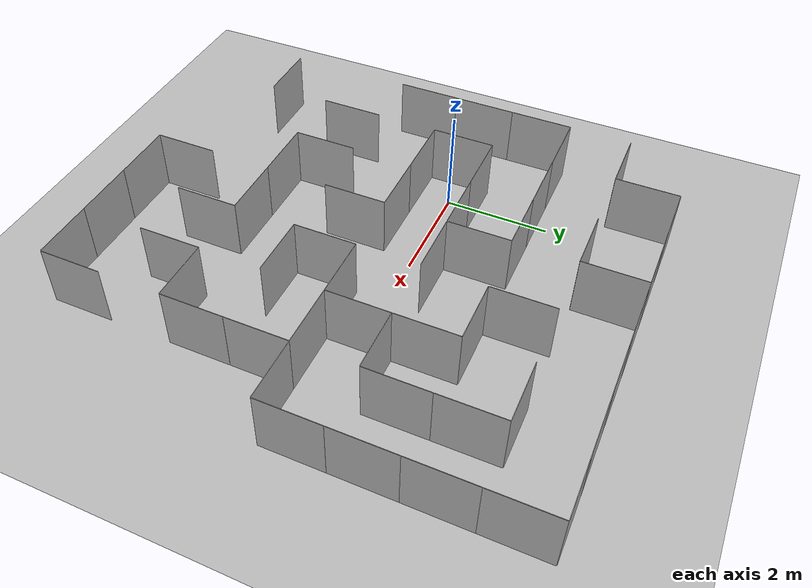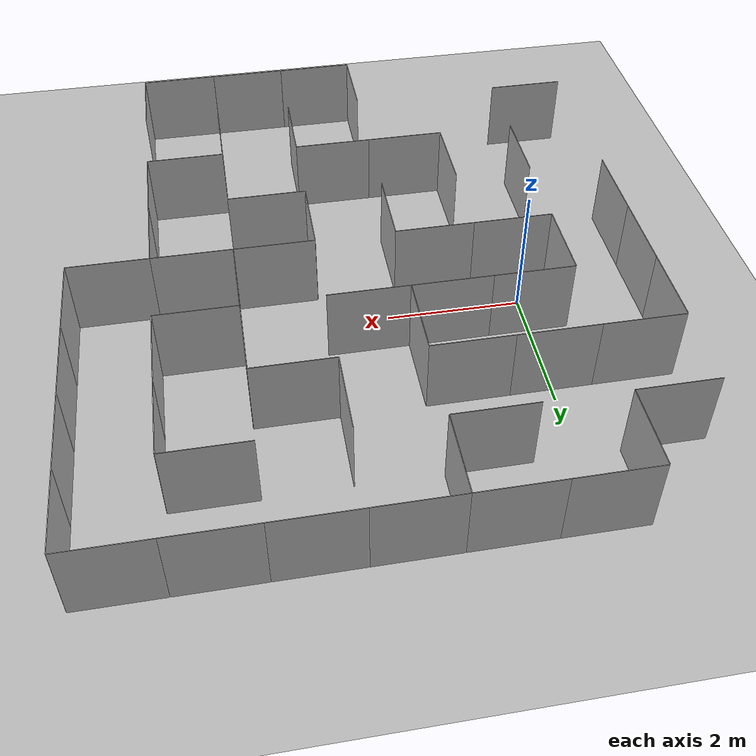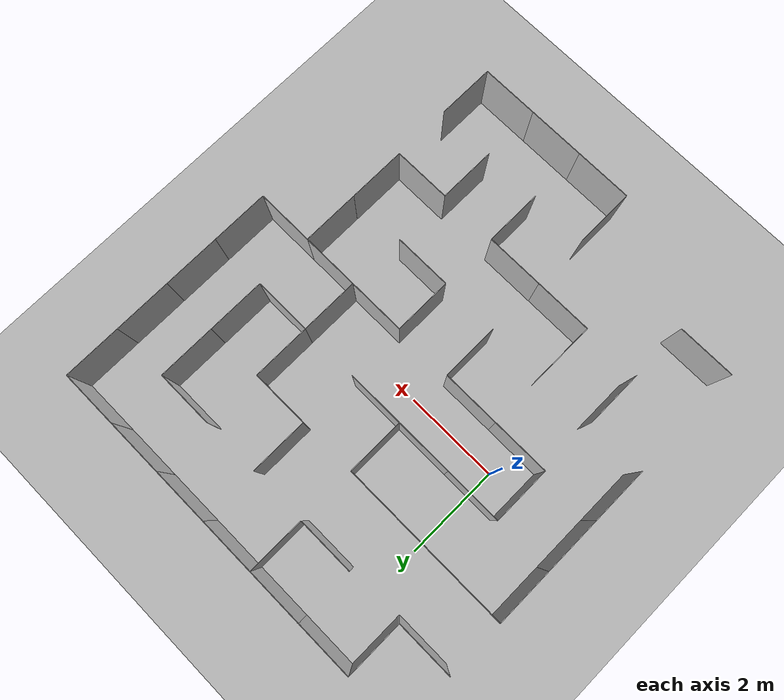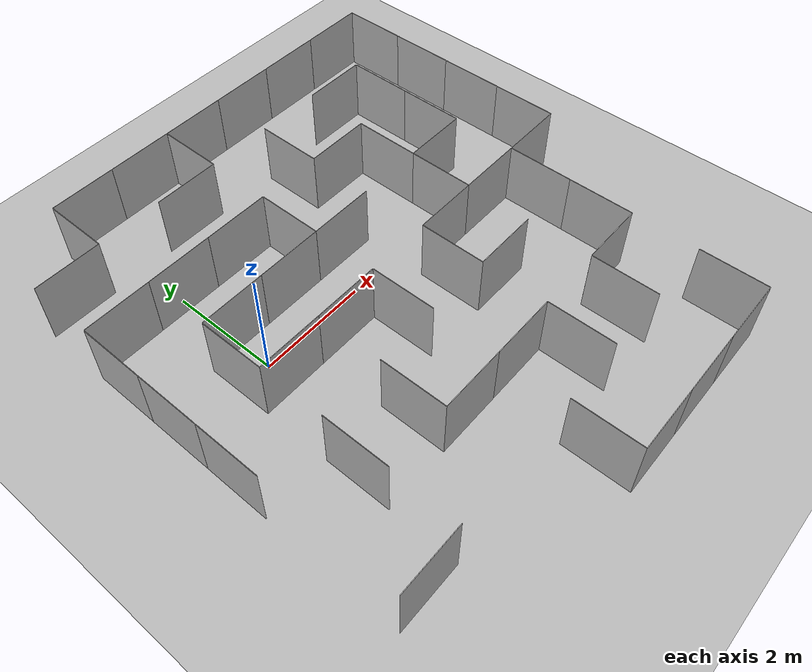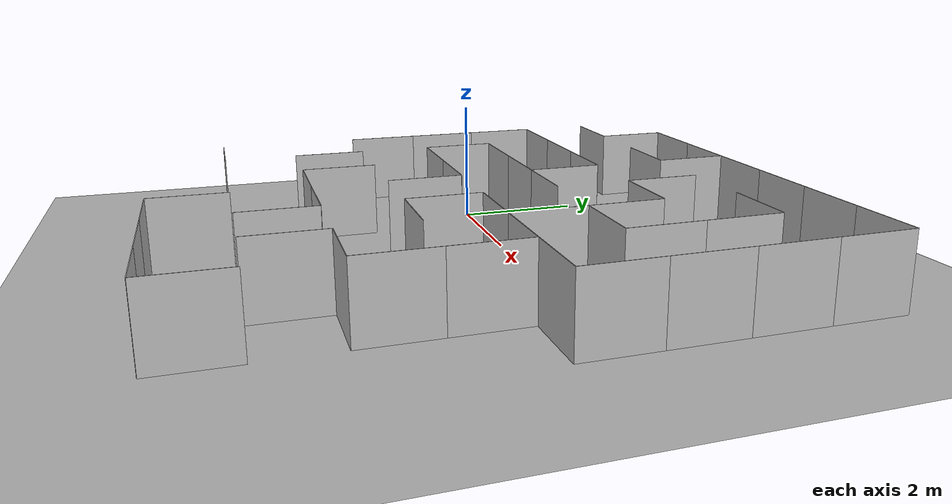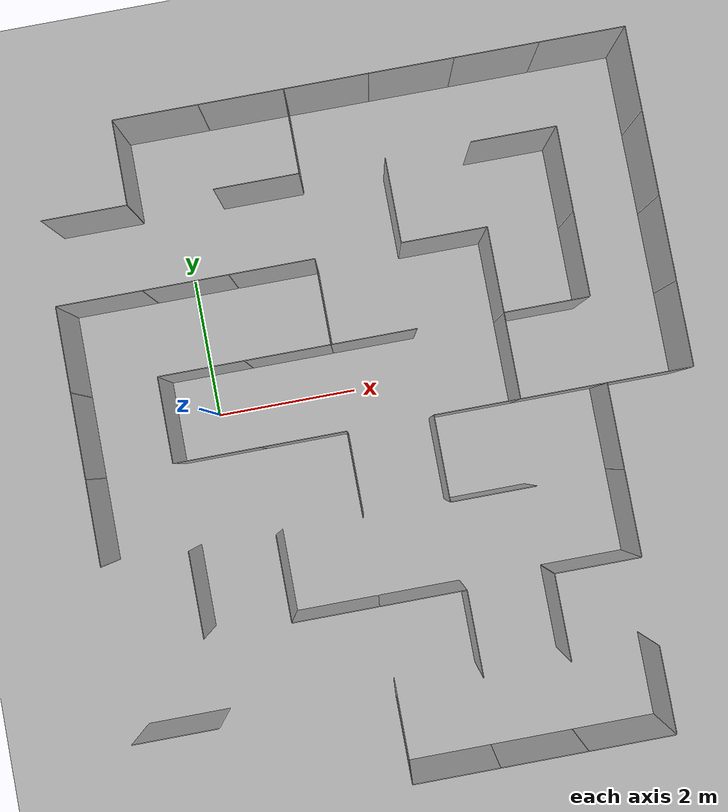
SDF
<sdf version="1.4">
 <world name="default">
  <model name="plane_model">
   <static>true</static>
   <link name="plane_model_link">
    <collision name="plane_model_collision">
     <geometry><plane><normal>0 0 1</normal></plane></geometry>
     <surface>
      <friction>
       <ode><mu>10.0</mu><mu2>10.0</mu2><fdir1>0 0 0</fdir1><slip1>0</slip1><slip2>0</slip2></ode>
      </friction>
      <bounce><restitution_coefficient>0</restitution_coefficient><threshold>1000000.0</threshold></bounce>
      <contact>
       <ode>
        <soft_cfm>0</soft_cfm>
        <soft_erp>0.2</soft_erp>
        <kp>1e10</kp>
        <kd>1</kd>
        <max_vel>100.0</max_vel>
        <min_depth>0.0001</min_depth>
       </ode>
      </contact>
     </surface>
    </collision>
    <visual name="plane_model_visual">
     <cast_shadows>false</cast_shadows>
     <geometry><mesh><uri>model://ground_plane/ground_plane.dae</uri><scale>1 1 1</scale></mesh></geometry>
    </visual>
   </link>
  </model>
  <model name="small_wall_61">
   <static>true</static>
   <link name="small_wall_61_link">
    <pose>0 0 0 0 0 -4.71239</pose>
    <collision name="small_wall_61_collision">
     <geometry><mesh><uri>model://small_wall/meshes/small_wall.dae</uri><scale>1 1 1</scale></mesh></geometry>
    </collision>
    <visual name="small_wall_61_visual">
     <cast_shadows>false</cast_shadows>
     <geometry><mesh><uri>model://small_wall/meshes/small_wall.dae</uri><scale>1 1 1</scale></mesh></geometry>
    </visual>
   </link>
  </model>
  <model name="small_wall_62">
   <static>true</static>
   <link name="small_wall_62_link">
    <pose>0 1.2 0 0 0 -3.14159</pose>
    <collision name="small_wall_62_collision">
     <geometry><mesh><uri>model://small_wall/meshes/small_wall.dae</uri><scale>1 1 1</scale></mesh></geometry>
    </collision>
    <visual name="small_wall_62_visual">
     <cast_shadows>false</cast_shadows>
     <geometry><mesh><uri>model://small_wall/meshes/small_wall.dae</uri><scale>1 1 1</scale></mesh></geometry>
    </visual>
   </link>
  </model>
  <model name="small_wall_63">
   <static>true</static>
   <link name="small_wall_63_link">
    <pose>1.2 1.2 0 0 0 -3.14159</pose>
    <collision name="small_wall_63_collision">
     <geometry><mesh><uri>model://small_wall/meshes/small_wall.dae</uri><scale>1 1 1</scale></mesh></geometry>
    </collision>
    <visual name="small_wall_63_visual">
     <cast_shadows>false</cast_shadows>
     <geometry><mesh><uri>model://small_wall/meshes/small_wall.dae</uri><scale>1 1 1</scale></mesh></geometry>
    </visual>
   </link>
  </model>
  <model name="small_wall_64">
   <static>true</static>
   <link name="small_wall_64_link">
    <pose>0 0 0 0 0 -3.14159</pose>
    <collision name="small_wall_64_collision">
     <geometry><mesh><uri>model://small_wall/meshes/small_wall.dae</uri><scale>1 1 1</scale></mesh></geometry>
    </collision>
    <visual name="small_wall_64_visual">
     <cast_shadows>false</cast_shadows>
     <geometry><mesh><uri>model://small_wall/meshes/small_wall.dae</uri><scale>1 1 1</scale></mesh></geometry>
    </visual>
   </link>
  </model>
  <model name="small_wall_65">
   <static>true</static>
   <link name="small_wall_65_link">
    <pose>1.2 0 0 0 0 -3.14159</pose>
    <collision name="small_wall_65_collision">
     <geometry><mesh><uri>model://small_wall/meshes/small_wall.dae</uri><scale>1 1 1</scale></mesh></geometry>
    </collision>
    <visual name="small_wall_65_visual">
     <cast_shadows>false</cast_shadows>
     <geometry><mesh><uri>model://small_wall/meshes/small_wall.dae</uri><scale>1 1 1</scale></mesh></geometry>
    </visual>
   </link>
  </model>
  <model name="small_wall_66">
   <static>true</static>
   <link name="small_wall_66_link">
    <pose>2.4 -1.2 0 0 0 -4.71239</pose>
    <collision name="small_wall_66_collision">
     <geometry><mesh><uri>model://small_wall/meshes/small_wall.dae</uri><scale>1 1 1</scale></mesh></geometry>
    </collision>
    <visual name="small_wall_66_visual">
     <cast_shadows>false</cast_shadows>
     <geometry><mesh><uri>model://small_wall/meshes/small_wall.dae</uri><scale>1 1 1</scale></mesh></geometry>
    </visual>
   </link>
  </model>
  <model name="small_wall_67">
   <static>true</static>
   <link name="small_wall_67_link">
    <pose>2.4 -1.2 0 0 0 -1.5708</pose>
    <collision name="small_wall_67_collision">
     <geometry><mesh><uri>model://small_wall/meshes/small_wall.dae</uri><scale>1 1 1</scale></mesh></geometry>
    </collision>
    <visual name="small_wall_67_visual">
     <cast_shadows>false</cast_shadows>
     <geometry><mesh><uri>model://small_wall/meshes/small_wall.dae</uri><scale>1 1 1</scale></mesh></geometry>
    </visual>
   </link>
  </model>
  <model name="small_wall_68">
   <static>true</static>
   <link name="small_wall_68_link">
    <pose>3.6 0 0 0 0 -3.14159</pose>
    <collision name="small_wall_68_collision">
     <geometry><mesh><uri>model://small_wall/meshes/small_wall.dae</uri><scale>1 1 1</scale></mesh></geometry>
    </collision>
    <visual name="small_wall_68_visual">
     <cast_shadows>false</cast_shadows>
     <geometry><mesh><uri>model://small_wall/meshes/small_wall.dae</uri><scale>1 1 1</scale></mesh></geometry>
    </visual>
   </link>
  </model>
  <model name="small_wall_69">
   <static>true</static>
   <link name="small_wall_69_link">
    <pose>3.6 0 0 0 0 -1.5708</pose>
    <collision name="small_wall_69_collision">
     <geometry><mesh><uri>model://small_wall/meshes/small_wall.dae</uri><scale>1 1 1</scale></mesh></geometry>
    </collision>
    <visual name="small_wall_69_visual">
     <cast_shadows>false</cast_shadows>
     <geometry><mesh><uri>model://small_wall/meshes/small_wall.dae</uri><scale>1 1 1</scale></mesh></geometry>
    </visual>
   </link>
  </model>
  <model name="small_wall_70">
   <static>true</static>
   <link name="small_wall_70_link">
    <pose>2.4 1.2 0 0 0 -3.14159</pose>
    <collision name="small_wall_70_collision">
     <geometry><mesh><uri>model://small_wall/meshes/small_wall.dae</uri><scale>1 1 1</scale></mesh></geometry>
    </collision>
    <visual name="small_wall_70_visual">
     <cast_shadows>false</cast_shadows>
     <geometry><mesh><uri>model://small_wall/meshes/small_wall.dae</uri><scale>1 1 1</scale></mesh></geometry>
    </visual>
   </link>
  </model>
  <model name="small_wall_71">
   <static>true</static>
   <link name="small_wall_71_link">
    <pose>3.6 1.2 0 0 0 -1.5708</pose>
    <collision name="small_wall_71_collision">
     <geometry><mesh><uri>model://small_wall/meshes/small_wall.dae</uri><scale>1 1 1</scale></mesh></geometry>
    </collision>
    <visual name="small_wall_71_visual">
     <cast_shadows>false</cast_shadows>
     <geometry><mesh><uri>model://small_wall/meshes/small_wall.dae</uri><scale>1 1 1</scale></mesh></geometry>
    </visual>
   </link>
  </model>
  <model name="small_wall_72">
   <static>true</static>
   <link name="small_wall_72_link">
    <pose>3.6 1.2 0 0 0 0</pose>
    <collision name="small_wall_72_collision">
     <geometry><mesh><uri>model://small_wall/meshes/small_wall.dae</uri><scale>1 1 1</scale></mesh></geometry>
    </collision>
    <visual name="small_wall_72_visual">
     <cast_shadows>false</cast_shadows>
     <geometry><mesh><uri>model://small_wall/meshes/small_wall.dae</uri><scale>1 1 1</scale></mesh></geometry>
    </visual>
   </link>
  </model>
  <model name="small_wall_73">
   <static>true</static>
   <link name="small_wall_73_link">
    <pose>2.4 1.2 0 0 0 -4.71239</pose>
    <collision name="small_wall_73_collision">
     <geometry><mesh><uri>model://small_wall/meshes/small_wall.dae</uri><scale>1 1 1</scale></mesh></geometry>
    </collision>
    <visual name="small_wall_73_visual">
     <cast_shadows>false</cast_shadows>
     <geometry><mesh><uri>model://small_wall/meshes/small_wall.dae</uri><scale>1 1 1</scale></mesh></geometry>
    </visual>
   </link>
  </model>
  <model name="small_wall_74">
   <static>true</static>
   <link name="small_wall_74_link">
    <pose>3.6 2.4 0 0 0 -4.71239</pose>
    <collision name="small_wall_74_collision">
     <geometry><mesh><uri>model://small_wall/meshes/small_wall.dae</uri><scale>1 1 1</scale></mesh></geometry>
    </collision>
    <visual name="small_wall_74_visual">
     <cast_shadows>false</cast_shadows>
     <geometry><mesh><uri>model://small_wall/meshes/small_wall.dae</uri><scale>1 1 1</scale></mesh></geometry>
    </visual>
   </link>
  </model>
  <model name="small_wall_75">
   <static>true</static>
   <link name="small_wall_75_link">
    <pose>1.2 2.4 0 0 0 -3.14159</pose>
    <collision name="small_wall_75_collision">
     <geometry><mesh><uri>model://small_wall/meshes/small_wall.dae</uri><scale>1 1 1</scale></mesh></geometry>
    </collision>
    <visual name="small_wall_75_visual">
     <cast_shadows>false</cast_shadows>
     <geometry><mesh><uri>model://small_wall/meshes/small_wall.dae</uri><scale>1 1 1</scale></mesh></geometry>
    </visual>
   </link>
  </model>
  <model name="small_wall_76">
   <static>true</static>
   <link name="small_wall_76_link">
    <pose>0 2.4 0 0 0 -3.14159</pose>
    <collision name="small_wall_76_collision">
     <geometry><mesh><uri>model://small_wall/meshes/small_wall.dae</uri><scale>1 1 1</scale></mesh></geometry>
    </collision>
    <visual name="small_wall_76_visual">
     <cast_shadows>false</cast_shadows>
     <geometry><mesh><uri>model://small_wall/meshes/small_wall.dae</uri><scale>1 1 1</scale></mesh></geometry>
    </visual>
   </link>
  </model>
  <model name="small_wall_77">
   <static>true</static>
   <link name="small_wall_77_link">
    <pose>-1.2 1.2 0 0 0 0</pose>
    <collision name="small_wall_77_collision">
     <geometry><mesh><uri>model://small_wall/meshes/small_wall.dae</uri><scale>1 1 1</scale></mesh></geometry>
    </collision>
    <visual name="small_wall_77_visual">
     <cast_shadows>false</cast_shadows>
     <geometry><mesh><uri>model://small_wall/meshes/small_wall.dae</uri><scale>1 1 1</scale></mesh></geometry>
    </visual>
   </link>
  </model>
  <model name="small_wall_78">
   <static>true</static>
   <link name="small_wall_78_link">
    <pose>-1.2 1.2 0 0 0 -4.71239</pose>
    <collision name="small_wall_78_collision">
     <geometry><mesh><uri>model://small_wall/meshes/small_wall.dae</uri><scale>1 1 1</scale></mesh></geometry>
    </collision>
    <visual name="small_wall_78_visual">
     <cast_shadows>false</cast_shadows>
     <geometry><mesh><uri>model://small_wall/meshes/small_wall.dae</uri><scale>1 1 1</scale></mesh></geometry>
    </visual>
   </link>
  </model>
  <model name="small_wall_79">
   <static>true</static>
   <link name="small_wall_79_link">
    <pose>-2.4 0 0 0 0 -1.5708</pose>
    <collision name="small_wall_79_collision">
     <geometry><mesh><uri>model://small_wall/meshes/small_wall.dae</uri><scale>1 1 1</scale></mesh></geometry>
    </collision>
    <visual name="small_wall_79_visual">
     <cast_shadows>false</cast_shadows>
     <geometry><mesh><uri>model://small_wall/meshes/small_wall.dae</uri><scale>1 1 1</scale></mesh></geometry>
    </visual>
   </link>
  </model>
  <model name="small_wall_80">
   <static>true</static>
   <link name="small_wall_80_link">
    <pose>1.2 3.6 0 0 0 -3.14159</pose>
    <collision name="small_wall_80_collision">
     <geometry><mesh><uri>model://small_wall/meshes/small_wall.dae</uri><scale>1 1 1</scale></mesh></geometry>
    </collision>
    <visual name="small_wall_80_visual">
     <cast_shadows>false</cast_shadows>
     <geometry><mesh><uri>model://small_wall/meshes/small_wall.dae</uri><scale>1 1 1</scale></mesh></geometry>
    </visual>
   </link>
  </model>
  <model name="small_wall_81">
   <static>true</static>
   <link name="small_wall_81_link">
    <pose>2.4 3.6 0 0 0 -4.71239</pose>
    <collision name="small_wall_81_collision">
     <geometry><mesh><uri>model://small_wall/meshes/small_wall.dae</uri><scale>1 1 1</scale></mesh></geometry>
    </collision>
    <visual name="small_wall_81_visual">
     <cast_shadows>false</cast_shadows>
     <geometry><mesh><uri>model://small_wall/meshes/small_wall.dae</uri><scale>1 1 1</scale></mesh></geometry>
    </visual>
   </link>
  </model>
  <model name="small_wall_82">
   <static>true</static>
   <link name="small_wall_82_link">
    <pose>2.4 3.6 0 0 0 0</pose>
    <collision name="small_wall_82_collision">
     <geometry><mesh><uri>model://small_wall/meshes/small_wall.dae</uri><scale>1 1 1</scale></mesh></geometry>
    </collision>
    <visual name="small_wall_82_visual">
     <cast_shadows>false</cast_shadows>
     <geometry><mesh><uri>model://small_wall/meshes/small_wall.dae</uri><scale>1 1 1</scale></mesh></geometry>
    </visual>
   </link>
  </model>
  <model name="small_wall_83">
   <static>true</static>
   <link name="small_wall_83_link">
    <pose>3.6 3.6 0 0 0 0</pose>
    <collision name="small_wall_83_collision">
     <geometry><mesh><uri>model://small_wall/meshes/small_wall.dae</uri><scale>1 1 1</scale></mesh></geometry>
    </collision>
    <visual name="small_wall_83_visual">
     <cast_shadows>false</cast_shadows>
     <geometry><mesh><uri>model://small_wall/meshes/small_wall.dae</uri><scale>1 1 1</scale></mesh></geometry>
    </visual>
   </link>
  </model>
  <model name="small_wall_84">
   <static>true</static>
   <link name="small_wall_84_link">
    <pose>4.8 2.4 0 0 0 0</pose>
    <collision name="small_wall_84_collision">
     <geometry><mesh><uri>model://small_wall/meshes/small_wall.dae</uri><scale>1 1 1</scale></mesh></geometry>
    </collision>
    <visual name="small_wall_84_visual">
     <cast_shadows>false</cast_shadows>
     <geometry><mesh><uri>model://small_wall/meshes/small_wall.dae</uri><scale>1 1 1</scale></mesh></geometry>
    </visual>
   </link>
  </model>
  <model name="small_wall_85">
   <static>true</static>
   <link name="small_wall_85_link">
    <pose>4.8 3.6 0 0 0 0</pose>
    <collision name="small_wall_85_collision">
     <geometry><mesh><uri>model://small_wall/meshes/small_wall.dae</uri><scale>1 1 1</scale></mesh></geometry>
    </collision>
    <visual name="small_wall_85_visual">
     <cast_shadows>false</cast_shadows>
     <geometry><mesh><uri>model://small_wall/meshes/small_wall.dae</uri><scale>1 1 1</scale></mesh></geometry>
    </visual>
   </link>
  </model>
  <model name="small_wall_86">
   <static>true</static>
   <link name="small_wall_86_link">
    <pose>4.8 2.4 0 0 0 -1.5708</pose>
    <collision name="small_wall_86_collision">
     <geometry><mesh><uri>model://small_wall/meshes/small_wall.dae</uri><scale>1 1 1</scale></mesh></geometry>
    </collision>
    <visual name="small_wall_86_visual">
     <cast_shadows>false</cast_shadows>
     <geometry><mesh><uri>model://small_wall/meshes/small_wall.dae</uri><scale>1 1 1</scale></mesh></geometry>
    </visual>
   </link>
  </model>
  <model name="small_wall_87">
   <static>true</static>
   <link name="small_wall_87_link">
    <pose>4.8 1.2 0 0 0 -1.5708</pose>
    <collision name="small_wall_87_collision">
     <geometry><mesh><uri>model://small_wall/meshes/small_wall.dae</uri><scale>1 1 1</scale></mesh></geometry>
    </collision>
    <visual name="small_wall_87_visual">
     <cast_shadows>false</cast_shadows>
     <geometry><mesh><uri>model://small_wall/meshes/small_wall.dae</uri><scale>1 1 1</scale></mesh></geometry>
    </visual>
   </link>
  </model>
  <model name="small_wall_88">
   <static>true</static>
   <link name="small_wall_88_link">
    <pose>4.8 1.2 0 0 0 -3.14159</pose>
    <collision name="small_wall_88_collision">
     <geometry><mesh><uri>model://small_wall/meshes/small_wall.dae</uri><scale>1 1 1</scale></mesh></geometry>
    </collision>
    <visual name="small_wall_88_visual">
     <cast_shadows>false</cast_shadows>
     <geometry><mesh><uri>model://small_wall/meshes/small_wall.dae</uri><scale>1 1 1</scale></mesh></geometry>
    </visual>
   </link>
  </model>
  <model name="small_wall_89">
   <static>true</static>
   <link name="small_wall_89_link">
    <pose>-1.2 -1.2 0 0 0 -4.71239</pose>
    <collision name="small_wall_89_collision">
     <geometry><mesh><uri>model://small_wall/meshes/small_wall.dae</uri><scale>1 1 1</scale></mesh></geometry>
    </collision>
    <visual name="small_wall_89_visual">
     <cast_shadows>false</cast_shadows>
     <geometry><mesh><uri>model://small_wall/meshes/small_wall.dae</uri><scale>1 1 1</scale></mesh></geometry>
    </visual>
   </link>
  </model>
  <model name="small_wall_90">
   <static>true</static>
   <link name="small_wall_90_link">
    <pose>0 -2.4 0 0 0 -4.71239</pose>
    <collision name="small_wall_90_collision">
     <geometry><mesh><uri>model://small_wall/meshes/small_wall.dae</uri><scale>1 1 1</scale></mesh></geometry>
    </collision>
    <visual name="small_wall_90_visual">
     <cast_shadows>false</cast_shadows>
     <geometry><mesh><uri>model://small_wall/meshes/small_wall.dae</uri><scale>1 1 1</scale></mesh></geometry>
    </visual>
   </link>
  </model>
  <model name="small_wall_91">
   <static>true</static>
   <link name="small_wall_91_link">
    <pose>0 -2.4 0 0 0 -1.5708</pose>
    <collision name="small_wall_91_collision">
     <geometry><mesh><uri>model://small_wall/meshes/small_wall.dae</uri><scale>1 1 1</scale></mesh></geometry>
    </collision>
    <visual name="small_wall_91_visual">
     <cast_shadows>false</cast_shadows>
     <geometry><mesh><uri>model://small_wall/meshes/small_wall.dae</uri><scale>1 1 1</scale></mesh></geometry>
    </visual>
   </link>
  </model>
  <model name="small_wall_92">
   <static>true</static>
   <link name="small_wall_92_link">
    <pose>1.2 -2.4 0 0 0 -3.14159</pose>
    <collision name="small_wall_92_collision">
     <geometry><mesh><uri>model://small_wall/meshes/small_wall.dae</uri><scale>1 1 1</scale></mesh></geometry>
    </collision>
    <visual name="small_wall_92_visual">
     <cast_shadows>false</cast_shadows>
     <geometry><mesh><uri>model://small_wall/meshes/small_wall.dae</uri><scale>1 1 1</scale></mesh></geometry>
    </visual>
   </link>
  </model>
  <model name="small_wall_93">
   <static>true</static>
   <link name="small_wall_93_link">
    <pose>2.4 -2.4 0 0 0 -3.14159</pose>
    <collision name="small_wall_93_collision">
     <geometry><mesh><uri>model://small_wall/meshes/small_wall.dae</uri><scale>1 1 1</scale></mesh></geometry>
    </collision>
    <visual name="small_wall_93_visual">
     <cast_shadows>false</cast_shadows>
     <geometry><mesh><uri>model://small_wall/meshes/small_wall.dae</uri><scale>1 1 1</scale></mesh></geometry>
    </visual>
   </link>
  </model>
  <model name="small_wall_94">
   <static>true</static>
   <link name="small_wall_94_link">
    <pose>3.6 -3.6 0 0 0 -4.71239</pose>
    <collision name="small_wall_94_collision">
     <geometry><mesh><uri>model://small_wall/meshes/small_wall.dae</uri><scale>1 1 1</scale></mesh></geometry>
    </collision>
    <visual name="small_wall_94_visual">
     <cast_shadows>false</cast_shadows>
     <geometry><mesh><uri>model://small_wall/meshes/small_wall.dae</uri><scale>1 1 1</scale></mesh></geometry>
    </visual>
   </link>
  </model>
  <model name="small_wall_95">
   <static>true</static>
   <link name="small_wall_95_link">
    <pose>3.6 -1.2 0 0 0 -3.14159</pose>
    <collision name="small_wall_95_collision">
     <geometry><mesh><uri>model://small_wall/meshes/small_wall.dae</uri><scale>1 1 1</scale></mesh></geometry>
    </collision>
    <visual name="small_wall_95_visual">
     <cast_shadows>false</cast_shadows>
     <geometry><mesh><uri>model://small_wall/meshes/small_wall.dae</uri><scale>1 1 1</scale></mesh></geometry>
    </visual>
   </link>
  </model>
  <model name="small_wall_96">
   <static>true</static>
   <link name="small_wall_96_link">
    <pose>6 -2.4 0 0 0 -4.71239</pose>
    <collision name="small_wall_96_collision">
     <geometry><mesh><uri>model://small_wall/meshes/small_wall.dae</uri><scale>1 1 1</scale></mesh></geometry>
    </collision>
    <visual name="small_wall_96_visual">
     <cast_shadows>false</cast_shadows>
     <geometry><mesh><uri>model://small_wall/meshes/small_wall.dae</uri><scale>1 1 1</scale></mesh></geometry>
    </visual>
   </link>
  </model>
  <model name="small_wall_97">
   <static>true</static>
   <link name="small_wall_97_link">
    <pose>4.8 -1.2 0 0 0 0</pose>
    <collision name="small_wall_97_collision">
     <geometry><mesh><uri>model://small_wall/meshes/small_wall.dae</uri><scale>1 1 1</scale></mesh></geometry>
    </collision>
    <visual name="small_wall_97_visual">
     <cast_shadows>false</cast_shadows>
     <geometry><mesh><uri>model://small_wall/meshes/small_wall.dae</uri><scale>1 1 1</scale></mesh></geometry>
    </visual>
   </link>
  </model>
  <model name="small_wall_98">
   <static>true</static>
   <link name="small_wall_98_link">
    <pose>4.8 -1.2 0 0 0 -1.5708</pose>
    <collision name="small_wall_98_collision">
     <geometry><mesh><uri>model://small_wall/meshes/small_wall.dae</uri><scale>1 1 1</scale></mesh></geometry>
    </collision>
    <visual name="small_wall_98_visual">
     <cast_shadows>false</cast_shadows>
     <geometry><mesh><uri>model://small_wall/meshes/small_wall.dae</uri><scale>1 1 1</scale></mesh></geometry>
    </visual>
   </link>
  </model>
  <model name="small_wall_99">
   <static>true</static>
   <link name="small_wall_99_link">
    <pose>4.8 -2.4 0 0 0 -3.14159</pose>
    <collision name="small_wall_99_collision">
     <geometry><mesh><uri>model://small_wall/meshes/small_wall.dae</uri><scale>1 1 1</scale></mesh></geometry>
    </collision>
    <visual name="small_wall_99_visual">
     <cast_shadows>false</cast_shadows>
     <geometry><mesh><uri>model://small_wall/meshes/small_wall.dae</uri><scale>1 1 1</scale></mesh></geometry>
    </visual>
   </link>
  </model>
  <model name="small_wall_100">
   <static>true</static>
   <link name="small_wall_100_link">
    <pose>6 4.8 0 0 0 -3.14159</pose>
    <collision name="small_wall_100_collision">
     <geometry><mesh><uri>model://small_wall/meshes/small_wall.dae</uri><scale>1 1 1</scale></mesh></geometry>
    </collision>
    <visual name="small_wall_100_visual">
     <cast_shadows>false</cast_shadows>
     <geometry><mesh><uri>model://small_wall/meshes/small_wall.dae</uri><scale>1 1 1</scale></mesh></geometry>
    </visual>
   </link>
  </model>
  <model name="small_wall_101">
   <static>true</static>
   <link name="small_wall_101_link">
    <pose>6 3.6 0 0 0 -1.5708</pose>
    <collision name="small_wall_101_collision">
     <geometry><mesh><uri>model://small_wall/meshes/small_wall.dae</uri><scale>1 1 1</scale></mesh></geometry>
    </collision>
    <visual name="small_wall_101_visual">
     <cast_shadows>false</cast_shadows>
     <geometry><mesh><uri>model://small_wall/meshes/small_wall.dae</uri><scale>1 1 1</scale></mesh></geometry>
    </visual>
   </link>
  </model>
  <model name="small_wall_102">
   <static>true</static>
   <link name="small_wall_102_link">
    <pose>6 2.4 0 0 0 -1.5708</pose>
    <collision name="small_wall_102_collision">
     <geometry><mesh><uri>model://small_wall/meshes/small_wall.dae</uri><scale>1 1 1</scale></mesh></geometry>
    </collision>
    <visual name="small_wall_102_visual">
     <cast_shadows>false</cast_shadows>
     <geometry><mesh><uri>model://small_wall/meshes/small_wall.dae</uri><scale>1 1 1</scale></mesh></geometry>
    </visual>
   </link>
  </model>
  <model name="small_wall_103">
   <static>true</static>
   <link name="small_wall_103_link">
    <pose>6 1.2 0 0 0 -1.5708</pose>
    <collision name="small_wall_103_collision">
     <geometry><mesh><uri>model://small_wall/meshes/small_wall.dae</uri><scale>1 1 1</scale></mesh></geometry>
    </collision>
    <visual name="small_wall_103_visual">
     <cast_shadows>false</cast_shadows>
     <geometry><mesh><uri>model://small_wall/meshes/small_wall.dae</uri><scale>1 1 1</scale></mesh></geometry>
    </visual>
   </link>
  </model>
  <model name="small_wall_104">
   <static>true</static>
   <link name="small_wall_104_link">
    <pose>6 0 0 0 0 -1.5708</pose>
    <collision name="small_wall_104_collision">
     <geometry><mesh><uri>model://small_wall/meshes/small_wall.dae</uri><scale>1 1 1</scale></mesh></geometry>
    </collision>
    <visual name="small_wall_104_visual">
     <cast_shadows>false</cast_shadows>
     <geometry><mesh><uri>model://small_wall/meshes/small_wall.dae</uri><scale>1 1 1</scale></mesh></geometry>
    </visual>
   </link>
  </model>
  <model name="small_wall_105">
   <static>true</static>
   <link name="small_wall_105_link">
    <pose>6 0 0 0 0 -3.14159</pose>
    <collision name="small_wall_105_collision">
     <geometry><mesh><uri>model://small_wall/meshes/small_wall.dae</uri><scale>1 1 1</scale></mesh></geometry>
    </collision>
    <visual name="small_wall_105_visual">
     <cast_shadows>false</cast_shadows>
     <geometry><mesh><uri>model://small_wall/meshes/small_wall.dae</uri><scale>1 1 1</scale></mesh></geometry>
    </visual>
   </link>
  </model>
  <model name="small_wall_106">
   <static>true</static>
   <link name="small_wall_106_link">
    <pose>-1.2 3.6 0 0 0 -3.14159</pose>
    <collision name="small_wall_106_collision">
     <geometry><mesh><uri>model://small_wall/meshes/small_wall.dae</uri><scale>1 1 1</scale></mesh></geometry>
    </collision>
    <visual name="small_wall_106_visual">
     <cast_shadows>false</cast_shadows>
     <geometry><mesh><uri>model://small_wall/meshes/small_wall.dae</uri><scale>1 1 1</scale></mesh></geometry>
    </visual>
   </link>
  </model>
  <model name="small_wall_107">
   <static>true</static>
   <link name="small_wall_107_link">
    <pose>-1.2 3.6 0 0 0 -1.5708</pose>
    <collision name="small_wall_107_collision">
     <geometry><mesh><uri>model://small_wall/meshes/small_wall.dae</uri><scale>1 1 1</scale></mesh></geometry>
    </collision>
    <visual name="small_wall_107_visual">
     <cast_shadows>false</cast_shadows>
     <geometry><mesh><uri>model://small_wall/meshes/small_wall.dae</uri><scale>1 1 1</scale></mesh></geometry>
    </visual>
   </link>
  </model>
  <model name="small_wall_108">
   <static>true</static>
   <link name="small_wall_108_link">
    <pose>0 4.8 0 0 0 -3.14159</pose>
    <collision name="small_wall_108_collision">
     <geometry><mesh><uri>model://small_wall/meshes/small_wall.dae</uri><scale>1 1 1</scale></mesh></geometry>
    </collision>
    <visual name="small_wall_108_visual">
     <cast_shadows>false</cast_shadows>
     <geometry><mesh><uri>model://small_wall/meshes/small_wall.dae</uri><scale>1 1 1</scale></mesh></geometry>
    </visual>
   </link>
  </model>
  <model name="small_wall_109">
   <static>true</static>
   <link name="small_wall_109_link">
    <pose>1.2 4.8 0 0 0 -3.14159</pose>
    <collision name="small_wall_109_collision">
     <geometry><mesh><uri>model://small_wall/meshes/small_wall.dae</uri><scale>1 1 1</scale></mesh></geometry>
    </collision>
    <visual name="small_wall_109_visual">
     <cast_shadows>false</cast_shadows>
     <geometry><mesh><uri>model://small_wall/meshes/small_wall.dae</uri><scale>1 1 1</scale></mesh></geometry>
    </visual>
   </link>
  </model>
  <model name="small_wall_110">
   <static>true</static>
   <link name="small_wall_110_link">
    <pose>3.6 -3.6 0 0 0 -1.5708</pose>
    <collision name="small_wall_110_collision">
     <geometry><mesh><uri>model://small_wall/meshes/small_wall.dae</uri><scale>1 1 1</scale></mesh></geometry>
    </collision>
    <visual name="small_wall_110_visual">
     <cast_shadows>false</cast_shadows>
     <geometry><mesh><uri>model://small_wall/meshes/small_wall.dae</uri><scale>1 1 1</scale></mesh></geometry>
    </visual>
   </link>
  </model>
  <model name="small_wall_111">
   <static>true</static>
   <link name="small_wall_111_link">
    <pose>3.6 -4.8 0 0 0 -3.14159</pose>
    <collision name="small_wall_111_collision">
     <geometry><mesh><uri>model://small_wall/meshes/small_wall.dae</uri><scale>1 1 1</scale></mesh></geometry>
    </collision>
    <visual name="small_wall_111_visual">
     <cast_shadows>false</cast_shadows>
     <geometry><mesh><uri>model://small_wall/meshes/small_wall.dae</uri><scale>1 1 1</scale></mesh></geometry>
    </visual>
   </link>
  </model>
  <model name="small_wall_112">
   <static>true</static>
   <link name="small_wall_112_link">
    <pose>4.8 -4.8 0 0 0 -3.14159</pose>
    <collision name="small_wall_112_collision">
     <geometry><mesh><uri>model://small_wall/meshes/small_wall.dae</uri><scale>1 1 1</scale></mesh></geometry>
    </collision>
    <visual name="small_wall_112_visual">
     <cast_shadows>false</cast_shadows>
     <geometry><mesh><uri>model://small_wall/meshes/small_wall.dae</uri><scale>1 1 1</scale></mesh></geometry>
    </visual>
   </link>
  </model>
  <model name="small_wall_113">
   <static>true</static>
   <link name="small_wall_113_link">
    <pose>4.8 -4.8 0 0 0 -1.5708</pose>
    <collision name="small_wall_113_collision">
     <geometry><mesh><uri>model://small_wall/meshes/small_wall.dae</uri><scale>1 1 1</scale></mesh></geometry>
    </collision>
    <visual name="small_wall_113_visual">
     <cast_shadows>false</cast_shadows>
     <geometry><mesh><uri>model://small_wall/meshes/small_wall.dae</uri><scale>1 1 1</scale></mesh></geometry>
    </visual>
   </link>
  </model>
  <model name="small_wall_114">
   <static>true</static>
   <link name="small_wall_114_link">
    <pose>-1.2 -4.8 0 0 0 0</pose>
    <collision name="small_wall_114_collision">
     <geometry><mesh><uri>model://small_wall/meshes/small_wall.dae</uri><scale>1 1 1</scale></mesh></geometry>
    </collision>
    <visual name="small_wall_114_visual">
     <cast_shadows>false</cast_shadows>
     <geometry><mesh><uri>model://small_wall/meshes/small_wall.dae</uri><scale>1 1 1</scale></mesh></geometry>
    </visual>
   </link>
  </model>
  <model name="small_wall_115">
   <static>true</static>
   <link name="small_wall_115_link">
    <pose>2.4 -4.8 0 0 0 -3.14159</pose>
    <collision name="small_wall_115_collision">
     <geometry><mesh><uri>model://small_wall/meshes/small_wall.dae</uri><scale>1 1 1</scale></mesh></geometry>
    </collision>
    <visual name="small_wall_115_visual">
     <cast_shadows>false</cast_shadows>
     <geometry><mesh><uri>model://small_wall/meshes/small_wall.dae</uri><scale>1 1 1</scale></mesh></geometry>
    </visual>
   </link>
  </model>
  <model name="small_wall_116">
   <static>true</static>
   <link name="small_wall_116_link">
    <pose>2.4 -4.8 0 0 0 -4.71239</pose>
    <collision name="small_wall_116_collision">
     <geometry><mesh><uri>model://small_wall/meshes/small_wall.dae</uri><scale>1 1 1</scale></mesh></geometry>
    </collision>
    <visual name="small_wall_116_visual">
     <cast_shadows>false</cast_shadows>
     <geometry><mesh><uri>model://small_wall/meshes/small_wall.dae</uri><scale>1 1 1</scale></mesh></geometry>
    </visual>
   </link>
  </model>
 </world>
</sdf>
